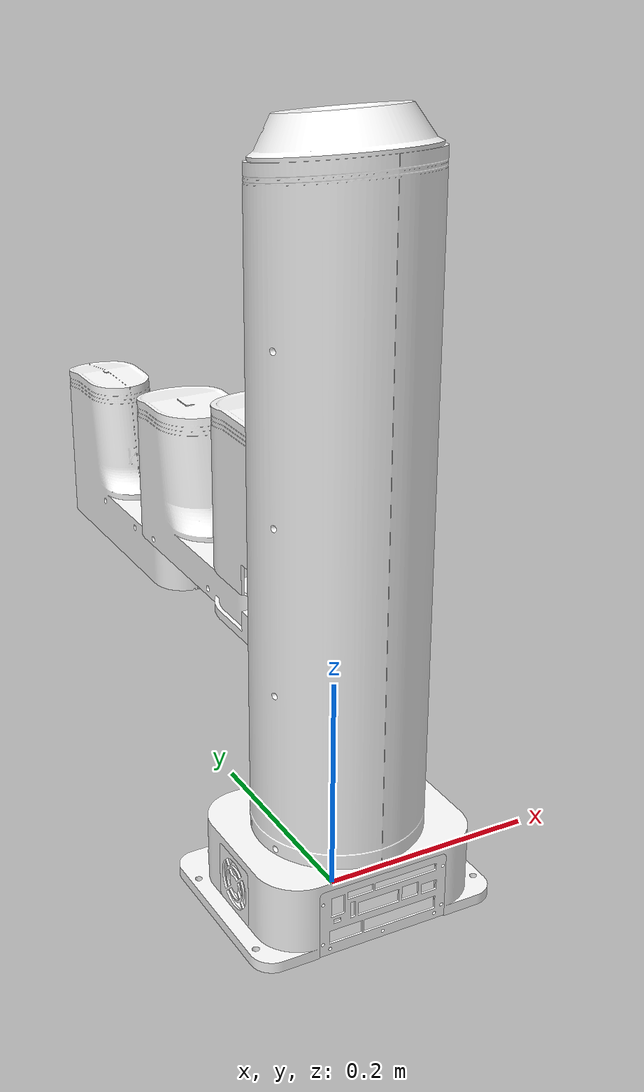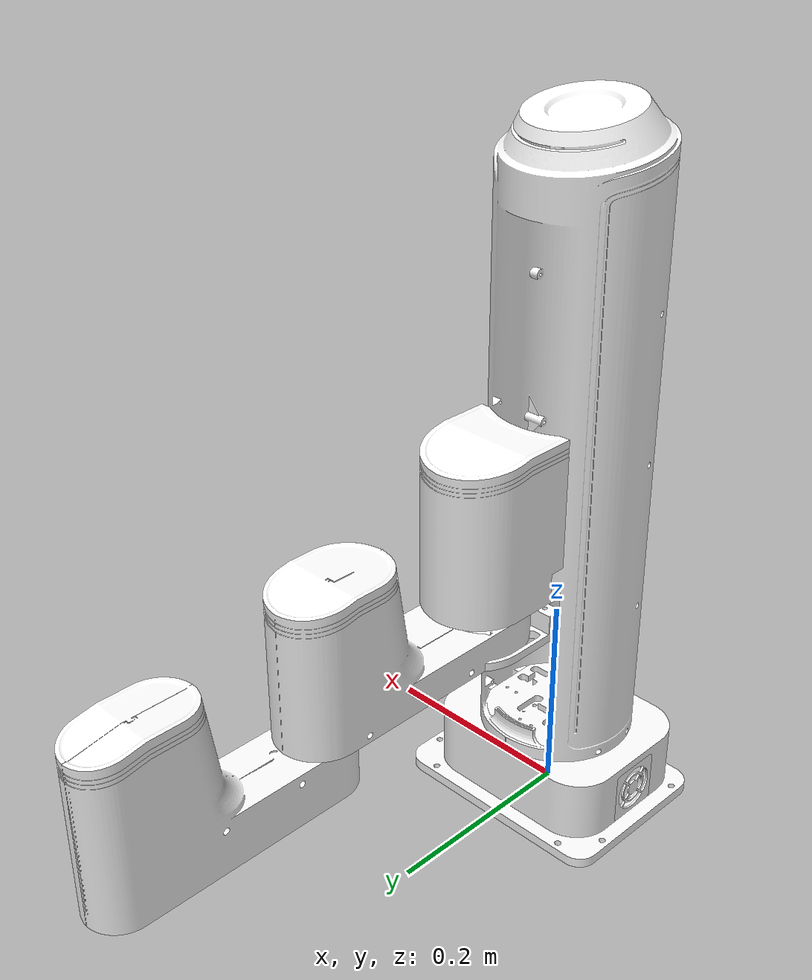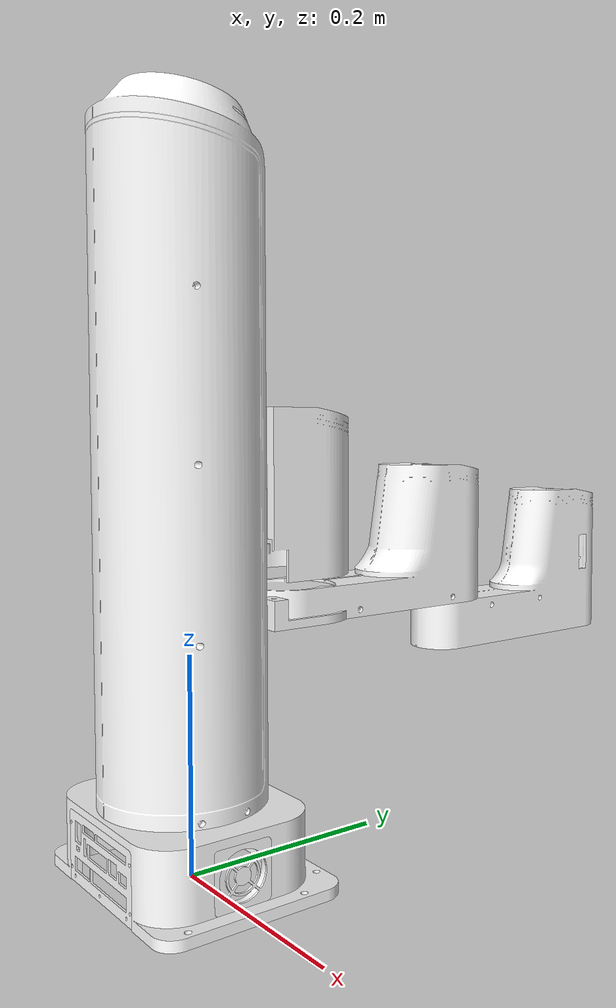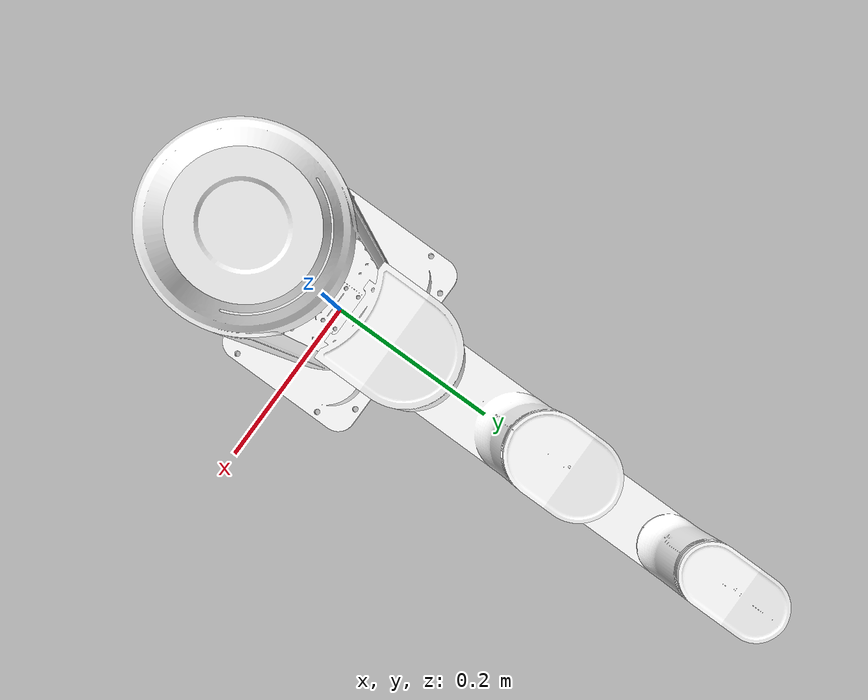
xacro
<?xml version="1.0"?>
<robot xmlns:xacro="http://ros.org/wiki/xacro" name="Eddie">

  <xacro:include filename="$(find dobot_m1_description)/model/dobot_m1.urdf.xacro" />

  <link name="world" />

  <xacro:dobot_m1 name="dobot_m1" parent="world">
    <origin xyz="0.0 0.0 0.0"/>
  </xacro:dobot_m1>

</robot>

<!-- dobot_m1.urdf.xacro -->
<robot xmlns:xacro="http://ros.org/wiki/xacro" >

  <xacro:include filename="$(find dobot_m1_description)/model/materials.urdf"/>
  <xacro:include filename="$(find dobot_m1_description)/model/dobot_m1.inertia.xacro"/>
  <xacro:include filename="$(find dobot_m1_description)/model/dobot_m1.transmission.xacro"/>
  <xacro:include filename="$(find dobot_m1_description)/model/dobot_m1.gazebo.xacro"/>

  <xacro:property name="M_PI" value="3.1415926535897931" />
  <xacro:property name="velocity_scale_factor" value="1.0"/>

  <xacro:macro name="dobot_m1" params="parent name *origin">

    <!-- The base fixed to its parent. -->
    <joint name="${parent}_${name}_base_joint" type="fixed">
      <xacro:insert_block name="origin"/>
      <parent link="${parent}"/>
      <child link="${name}_base_link"/>
    </joint>

    <link name="${name}_base_link">
      <inertial>
        <xacro:insert_block name="negligible_inertia"/>
      </inertial>
      <visual>
        <origin xyz="0 0 0" rpy="0 0 0"/>
        <geometry>
          <mesh filename="package://dobot_m1_description/meshes/dobot_m1_base.stl" scale="0.001 0.001 0.001" />
        </geometry>
        <material name="Dobot/White"/>
      </visual>
      <collision>
        <origin xyz="0 0 0.045" rpy="0 0 0"/>
        <geometry>
          <cylinder radius="0.12" length="0.09"/>
        </geometry>
      </collision>
    </link>

    <!-- Stand fixed to the base -->
    <joint name="${name}_stand_joint" type="fixed">
      <origin xyz="0 0 0" rpy="0 0 0"/>
      <parent link="${name}_base_link"/>
      <child link="${name}_stand_link"/>
    </joint>

    <link name="${name}_stand_link">
      <inertial>
        <xacro:insert_block name="negligible_inertia"/>
      </inertial>
      <visual>
        <origin xyz="0 0 0" rpy="0 0 0"/>
        <geometry>
          <mesh filename="package://dobot_m1_description/meshes/dobot_m1_stand.stl" scale="0.001 0.001 0.001" />
        </geometry>
        <material name="Dobot/White"/>
      </visual>
      <collision>
        <origin xyz="0 0 0.4" rpy="0 0 0"/>
        <geometry>
          <cylinder radius="0.09" length="0.65"/>
        </geometry>
      </collision>
    </link>

    <!-- Z-Axis -->
    <joint name="${name}_z_axis_joint" type="prismatic">
      <origin xyz="0 0.1 0.097" rpy="0 0 0"/>
      <axis xyz="0 0 1"/>
          <limit lower="0.02" upper="0.23" effort="20.0" velocity="0.02" />
            <dynamics friction="1.0" damping="1.0"/>
      <parent link="${name}_stand_link"/>
      <child link="${name}_z_axis_link"/>
    </joint>

    <link name="${name}_z_axis_link">
      <inertial>
        <xacro:insert_block name="negligible_inertia"/>
      </inertial>
      <visual>
        <origin xyz="0 0 0" rpy="0 0 0"/>
        <geometry>
          <mesh filename="package://dobot_m1_description/meshes/dobot_m1_z-axis.stl" scale="0.001 0.001 0.001" />
        </geometry>
        <material name="Dobot/White"/>
      </visual>
      <collision>
        <origin xyz="0 0 0.1" rpy="0 0 0"/>
        <geometry>
          <cylinder radius="0.07" length="0.2"/>
        </geometry>
      </collision>
    </link>

    <!-- 2-Axis -->
    <joint name="${name}_axis_2_joint" type="revolute">
      <origin xyz="0 0 0" rpy="0 0 0"/>
      <axis xyz="0 0 1"/>
      <limit lower="${-85 * M_PI / 180}" upper="${85 * M_PI / 180}"
             effort="204" velocity="${velocity_scale_factor * 180 * M_PI / 180}" />
      <safety_controller soft_lower_limit="${-84 * M_PI / 180}"
                         soft_upper_limit="${84 * M_PI / 180}"
                         k_position="30"
                         k_velocity="30"/>
      <dynamics friction="1.0" damping="1.0"/>
      <parent link="${name}_z_axis_link"/>
      <child link="${name}_axis_2_link"/>
    </joint>

    <link name="${name}_axis_2_link">
      <inertial>
        <xacro:insert_block name="negligible_inertia"/>
      </inertial>
      <visual>
        <origin xyz="0 0.1 0" rpy="0 0 0"/>
        <geometry>
          <mesh filename="package://dobot_m1_description/meshes/dobot_m1_axis-2.stl" scale="0.001 0.001 0.001" />
        </geometry>
        <material name="Dobot/White"/>
      </visual>
      <collision>
        <origin xyz="0 0 0.1" rpy="0 0 0"/>
        <geometry>
          <cylinder radius="0.07" length="0.2"/>
        </geometry>
      </collision>
    </link>

    <!-- 3-Axis -->
    <joint name="${name}_axis_3_joint" type="revolute">
      <origin xyz="0 0.2 -0.05" rpy="0 0 0"/>
      <axis xyz="0 0 1"/>
      <limit lower="${-135 * M_PI / 180}" upper="${135 * M_PI / 180}"
             effort="204" velocity="${velocity_scale_factor * 180 * M_PI / 180}" />
      <safety_controller soft_lower_limit="${-134 * M_PI / 180}"
                         soft_upper_limit="${134 * M_PI / 180}"
                         k_position="30"
                         k_velocity="30"/>
      <dynamics friction="1.0" damping="1.0"/>
      <parent link="${name}_axis_2_link"/>
      <child link="${name}_axis_3_link"/>
    </joint>

    <link name="${name}_axis_3_link">
      <inertial>
        <xacro:insert_block name="negligible_inertia"/>
      </inertial>
      <visual>
        <origin xyz="0 0.1 0" rpy="0 0 0"/>
        <geometry>
          <mesh filename="package://dobot_m1_description/meshes/dobot_m1_axis-3.stl" scale="0.001 0.001 0.001" />
        </geometry>
        <material name="Dobot/White"/>
      </visual>
      <collision>
        <origin xyz="0 0 0.1" rpy="0 0 0"/>
        <geometry>
          <cylinder radius="0.07" length="0.2"/>
        </geometry>
      </collision>
    </link>

    <!-- 4-Axis -->
    <joint name="${name}_axis_4_joint" type="continuous">
      <origin xyz="0 0.2 0" rpy="0 0 0"/>
      <axis xyz="0 0 1"/>
      <dynamics friction="1.0" damping="1.0"/>
      <parent link="${name}_axis_3_link"/>
      <child link="${name}_axis_4_link"/>
    </joint>

    <link name="${name}_axis_4_link">
      <inertial>
        <xacro:insert_block name="negligible_inertia"/>
      </inertial>
      <visual>
        <origin xyz="0 0 0" rpy="0 0 0"/>
        <geometry>
          <mesh filename="package://dobot_m1_description/meshes/dobot_m1_axis-4.stl" scale="0.001 0.001 0.001" />
        </geometry>
        <material name="Dobot/White"/>
      </visual>
      <collision>
        <origin xyz="0 0 0.09" rpy="0 0 0"/>
        <geometry>
          <cylinder radius="0.07" length="0.18"/>
        </geometry>
      </collision>
    </link>
    <xacro:dobot_m1_transmission name="${name}"/>
    <xacro:dobot_m1_gazebo name="${name}"/>
  </xacro:macro>

</robot>

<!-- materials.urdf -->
<robot>
  <material name="Dobot/White">
    <color rgba="1 1 1 1.0"/>
  </material>

  <material name="Dobot/DarkGrey">
    <color rgba="0.3 0.3 0.3 1.0"/>
  </material>

  <material name="Dobot/LightGrey">
    <color rgba="0.8 0.8 0.8 1.0"/>
  </material>

  <material name="Dobot/Black">
    <color rgba="0 0 0 1.0"/>
  </material>

  <material name="Dobot/Grey">
    <color rgba="0.7 0.7 0.7 1.0"/>
  </material>

  <material name="Dobot/Blue">
    <color rgba="0.0 0.0 0.8 1.0"/>
  </material>

</robot>

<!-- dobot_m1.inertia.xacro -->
<robot xmlns:xacro="http://ros.org/wiki/xacro">

    <!-- NOTE: inertia values are approximated using meshlab and only using the significant elements -->

    <!-- conversions -->
    <!-- I couldn't make the simulation work with realistic values, so I tweaked the conversion values -->
    <xacro:property name="mm_to_m" value="0.001"/>
    <xacro:property name="mm2_to_m2" value="0.001"/>
    <xacro:property name="gr_to_Kg" value="0.001"/>

    <!-- not so negligible, otherwise simulation fails -->
    <xacro:property name="negligible_mass" value="${200*gr_to_Kg}"/>
    <xacro:property name="negligible_inertia">
        <origin xyz="0 0 0"/>
        <mass value="${negligible_mass}"/>
        <inertia ixx="${negligible_mass * 100 * mm2_to_m2}" ixy="0.0" ixz="0.0" iyy="${negligible_mass * 100 * mm2_to_m2}" iyz="0.0" izz="${negligible_mass * 100 * mm2_to_m2}"/>
    </xacro:property>

    <!-- real inertia for the head are still required -->

</robot>
